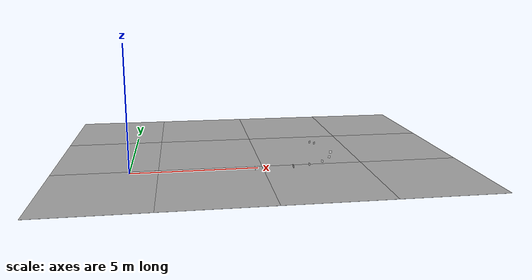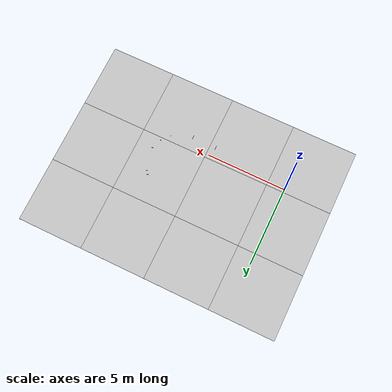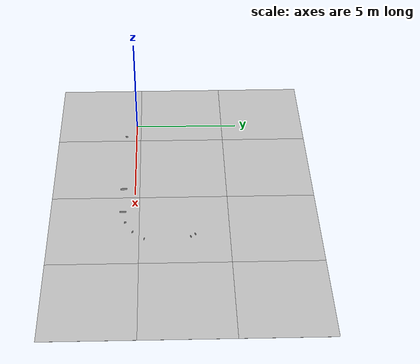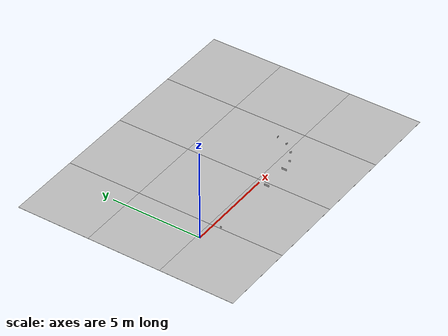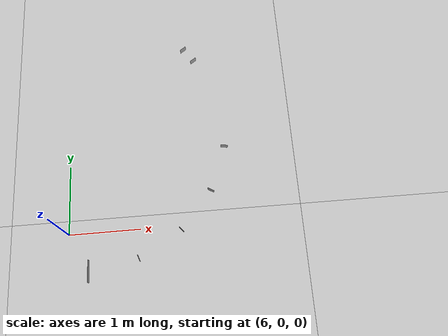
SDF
<sdf version='1.6'><world name='default'>
    <light name='sun_light' type='directional'>
      <pose frame=''>0 0 10 0 -0 0</pose>
      <diffuse>0.5 0.5 0.5 1</diffuse>
      <specular>0.1 0.1 0.1 1</specular>
      <direction>0.1 0.1 -0.9</direction>
      <attenuation>
        <range>20</range>
        <constant>0.5</constant>
        <linear>0.01</linear>
        <quadratic>0.001</quadratic>
      </attenuation>
      <cast_shadows>1</cast_shadows>
    </light>

    <model name='Tile/0-0'>
      <static>1</static>
      <link name='link'>
        <collision name='collision'>
          <geometry>
            <plane>
              <normal>0 0 1</normal>
              <size>4.096 4.096</size>
            </plane>
          </geometry>
          <surface>
            <friction>
              <ode>
                <mu>100</mu>
                <mu2>50</mu2>
              </ode>
              <torsional>
                <ode/>
              </torsional>
            </friction>
            <contact>
              <ode/>
            </contact>
            <bounce/>
          </surface>
          <max_contacts>10</max_contacts>
        </collision>
        <visual name='visual'>
          <cast_shadows>0</cast_shadows>
          <geometry>
            <plane>
              <normal>0 0 1</normal>
              <size>4.096 4.096</size>
            </plane>
          </geometry>
          <material>
            <script>
              <uri>file://materials/scripts</uri>
              <uri>file://materials/textures</uri>
              <name>Tile/59aa48be58bd1d39c4f8729740ab94a3ee72491696f29f5efb5f4e6bfd79c256</name>
            </script>
          </material>
        </visual>
        <self_collide>0</self_collide>
        <enable_wind>0</enable_wind>
        <kinematic>0</kinematic>
      </link>
      <pose frame=''>-0.952 -1.8519999999999999 0 0 -0 0</pose>
    </model>

    <model name='Tile/0-1'>
      <static>1</static>
      <link name='link'>
        <collision name='collision'>
          <geometry>
            <plane>
              <normal>0 0 1</normal>
              <size>4.096 4.096</size>
            </plane>
          </geometry>
          <surface>
            <friction>
              <ode>
                <mu>100</mu>
                <mu2>50</mu2>
              </ode>
              <torsional>
                <ode/>
              </torsional>
            </friction>
            <contact>
              <ode/>
            </contact>
            <bounce/>
          </surface>
          <max_contacts>10</max_contacts>
        </collision>
        <visual name='visual'>
          <cast_shadows>0</cast_shadows>
          <geometry>
            <plane>
              <normal>0 0 1</normal>
              <size>4.096 4.096</size>
            </plane>
          </geometry>
          <material>
            <script>
              <uri>file://materials/scripts</uri>
              <uri>file://materials/textures</uri>
              <name>Tile/cb742ec834ce0db14fa5edbd5a9bf9a3149f1d3629eb5aba388d11a938615e9e</name>
            </script>
          </material>
        </visual>
        <self_collide>0</self_collide>
        <enable_wind>0</enable_wind>
        <kinematic>0</kinematic>
      </link>
      <pose frame=''>-0.952 2.244 0 0 -0 0</pose>
    </model>

    <model name='Tile/0-2'>
      <static>1</static>
      <link name='link'>
        <collision name='collision'>
          <geometry>
            <plane>
              <normal>0 0 1</normal>
              <size>4.096 4.096</size>
            </plane>
          </geometry>
          <surface>
            <friction>
              <ode>
                <mu>100</mu>
                <mu2>50</mu2>
              </ode>
              <torsional>
                <ode/>
              </torsional>
            </friction>
            <contact>
              <ode/>
            </contact>
            <bounce/>
          </surface>
          <max_contacts>10</max_contacts>
        </collision>
        <visual name='visual'>
          <cast_shadows>0</cast_shadows>
          <geometry>
            <plane>
              <normal>0 0 1</normal>
              <size>4.096 4.096</size>
            </plane>
          </geometry>
          <material>
            <script>
              <uri>file://materials/scripts</uri>
              <uri>file://materials/textures</uri>
              <name>Tile/5eab350b8220ac9944dbdfa4ac3288c7c17e24c3bf5df0dfcf6173d64dae00a1</name>
            </script>
          </material>
        </visual>
        <self_collide>0</self_collide>
        <enable_wind>0</enable_wind>
        <kinematic>0</kinematic>
      </link>
      <pose frame=''>-0.952 6.34 0 0 -0 0</pose>
    </model>

    <model name='Tile/1-0'>
      <static>1</static>
      <link name='link'>
        <collision name='collision'>
          <geometry>
            <plane>
              <normal>0 0 1</normal>
              <size>4.096 4.096</size>
            </plane>
          </geometry>
          <surface>
            <friction>
              <ode>
                <mu>100</mu>
                <mu2>50</mu2>
              </ode>
              <torsional>
                <ode/>
              </torsional>
            </friction>
            <contact>
              <ode/>
            </contact>
            <bounce/>
          </surface>
          <max_contacts>10</max_contacts>
        </collision>
        <visual name='visual'>
          <cast_shadows>0</cast_shadows>
          <geometry>
            <plane>
              <normal>0 0 1</normal>
              <size>4.096 4.096</size>
            </plane>
          </geometry>
          <material>
            <script>
              <uri>file://materials/scripts</uri>
              <uri>file://materials/textures</uri>
              <name>Tile/88aa6c1ba2e389c2eef8b7d4c609f415ca4acb4c18d747929491a22a0553b7c5</name>
            </script>
          </material>
        </visual>
        <self_collide>0</self_collide>
        <enable_wind>0</enable_wind>
        <kinematic>0</kinematic>
      </link>
      <pose frame=''>3.144 -1.8519999999999999 0 0 -0 0</pose>
    </model>

    <model name='Tile/1-1'>
      <static>1</static>
      <link name='link'>
        <collision name='collision'>
          <geometry>
            <plane>
              <normal>0 0 1</normal>
              <size>4.096 4.096</size>
            </plane>
          </geometry>
          <surface>
            <friction>
              <ode>
                <mu>100</mu>
                <mu2>50</mu2>
              </ode>
              <torsional>
                <ode/>
              </torsional>
            </friction>
            <contact>
              <ode/>
            </contact>
            <bounce/>
          </surface>
          <max_contacts>10</max_contacts>
        </collision>
        <visual name='visual'>
          <cast_shadows>0</cast_shadows>
          <geometry>
            <plane>
              <normal>0 0 1</normal>
              <size>4.096 4.096</size>
            </plane>
          </geometry>
          <material>
            <script>
              <uri>file://materials/scripts</uri>
              <uri>file://materials/textures</uri>
              <name>Tile/5ddd2a6cf5edb8f996345af7b87e090f548fe0b630b4632dd3ba9ed6e4d9b0d3</name>
            </script>
          </material>
        </visual>
        <self_collide>0</self_collide>
        <enable_wind>0</enable_wind>
        <kinematic>0</kinematic>
      </link>
      <pose frame=''>3.144 2.244 0 0 -0 0</pose>
    </model>

    <model name='Tile/1-2'>
      <static>1</static>
      <link name='link'>
        <collision name='collision'>
          <geometry>
            <plane>
              <normal>0 0 1</normal>
              <size>4.096 4.096</size>
            </plane>
          </geometry>
          <surface>
            <friction>
              <ode>
                <mu>100</mu>
                <mu2>50</mu2>
              </ode>
              <torsional>
                <ode/>
              </torsional>
            </friction>
            <contact>
              <ode/>
            </contact>
            <bounce/>
          </surface>
          <max_contacts>10</max_contacts>
        </collision>
        <visual name='visual'>
          <cast_shadows>0</cast_shadows>
          <geometry>
            <plane>
              <normal>0 0 1</normal>
              <size>4.096 4.096</size>
            </plane>
          </geometry>
          <material>
            <script>
              <uri>file://materials/scripts</uri>
              <uri>file://materials/textures</uri>
              <name>Tile/5eab350b8220ac9944dbdfa4ac3288c7c17e24c3bf5df0dfcf6173d64dae00a1</name>
            </script>
          </material>
        </visual>
        <self_collide>0</self_collide>
        <enable_wind>0</enable_wind>
        <kinematic>0</kinematic>
      </link>
      <pose frame=''>3.144 6.34 0 0 -0 0</pose>
    </model>

    <model name='Tile/2-0'>
      <static>1</static>
      <link name='link'>
        <collision name='collision'>
          <geometry>
            <plane>
              <normal>0 0 1</normal>
              <size>4.096 4.096</size>
            </plane>
          </geometry>
          <surface>
            <friction>
              <ode>
                <mu>100</mu>
                <mu2>50</mu2>
              </ode>
              <torsional>
                <ode/>
              </torsional>
            </friction>
            <contact>
              <ode/>
            </contact>
            <bounce/>
          </surface>
          <max_contacts>10</max_contacts>
        </collision>
        <visual name='visual'>
          <cast_shadows>0</cast_shadows>
          <geometry>
            <plane>
              <normal>0 0 1</normal>
              <size>4.096 4.096</size>
            </plane>
          </geometry>
          <material>
            <script>
              <uri>file://materials/scripts</uri>
              <uri>file://materials/textures</uri>
              <name>Tile/c5b232c07722ed2893f3f45b4895ab30f2213ccb4bf319cb912ebb8fa9f5a875</name>
            </script>
          </material>
        </visual>
        <self_collide>0</self_collide>
        <enable_wind>0</enable_wind>
        <kinematic>0</kinematic>
      </link>
      <pose frame=''>7.24 -1.8519999999999999 0 0 -0 0</pose>
    </model>

    <model name='Tile/2-1'>
      <static>1</static>
      <link name='link'>
        <collision name='collision'>
          <geometry>
            <plane>
              <normal>0 0 1</normal>
              <size>4.096 4.096</size>
            </plane>
          </geometry>
          <surface>
            <friction>
              <ode>
                <mu>100</mu>
                <mu2>50</mu2>
              </ode>
              <torsional>
                <ode/>
              </torsional>
            </friction>
            <contact>
              <ode/>
            </contact>
            <bounce/>
          </surface>
          <max_contacts>10</max_contacts>
        </collision>
        <visual name='visual'>
          <cast_shadows>0</cast_shadows>
          <geometry>
            <plane>
              <normal>0 0 1</normal>
              <size>4.096 4.096</size>
            </plane>
          </geometry>
          <material>
            <script>
              <uri>file://materials/scripts</uri>
              <uri>file://materials/textures</uri>
              <name>Tile/ea01ec6d7f61fbdde9fbcadf1e8837ab0669c5f9427059ca0c0a9fba0a4ebab3</name>
            </script>
          </material>
        </visual>
        <self_collide>0</self_collide>
        <enable_wind>0</enable_wind>
        <kinematic>0</kinematic>
      </link>
      <pose frame=''>7.24 2.244 0 0 -0 0</pose>
    </model>

    <model name='Tile/2-2'>
      <static>1</static>
      <link name='link'>
        <collision name='collision'>
          <geometry>
            <plane>
              <normal>0 0 1</normal>
              <size>4.096 4.096</size>
            </plane>
          </geometry>
          <surface>
            <friction>
              <ode>
                <mu>100</mu>
                <mu2>50</mu2>
              </ode>
              <torsional>
                <ode/>
              </torsional>
            </friction>
            <contact>
              <ode/>
            </contact>
            <bounce/>
          </surface>
          <max_contacts>10</max_contacts>
        </collision>
        <visual name='visual'>
          <cast_shadows>0</cast_shadows>
          <geometry>
            <plane>
              <normal>0 0 1</normal>
              <size>4.096 4.096</size>
            </plane>
          </geometry>
          <material>
            <script>
              <uri>file://materials/scripts</uri>
              <uri>file://materials/textures</uri>
              <name>Tile/5eab350b8220ac9944dbdfa4ac3288c7c17e24c3bf5df0dfcf6173d64dae00a1</name>
            </script>
          </material>
        </visual>
        <self_collide>0</self_collide>
        <enable_wind>0</enable_wind>
        <kinematic>0</kinematic>
      </link>
      <pose frame=''>7.24 6.34 0 0 -0 0</pose>
    </model>

    <model name='Tile/3-0'>
      <static>1</static>
      <link name='link'>
        <collision name='collision'>
          <geometry>
            <plane>
              <normal>0 0 1</normal>
              <size>4.096 4.096</size>
            </plane>
          </geometry>
          <surface>
            <friction>
              <ode>
                <mu>100</mu>
                <mu2>50</mu2>
              </ode>
              <torsional>
                <ode/>
              </torsional>
            </friction>
            <contact>
              <ode/>
            </contact>
            <bounce/>
          </surface>
          <max_contacts>10</max_contacts>
        </collision>
        <visual name='visual'>
          <cast_shadows>0</cast_shadows>
          <geometry>
            <plane>
              <normal>0 0 1</normal>
              <size>4.096 4.096</size>
            </plane>
          </geometry>
          <material>
            <script>
              <uri>file://materials/scripts</uri>
              <uri>file://materials/textures</uri>
              <name>Tile/5eab350b8220ac9944dbdfa4ac3288c7c17e24c3bf5df0dfcf6173d64dae00a1</name>
            </script>
          </material>
        </visual>
        <self_collide>0</self_collide>
        <enable_wind>0</enable_wind>
        <kinematic>0</kinematic>
      </link>
      <pose frame=''>11.336 -1.8519999999999999 0 0 -0 0</pose>
    </model>

    <model name='Tile/3-1'>
      <static>1</static>
      <link name='link'>
        <collision name='collision'>
          <geometry>
            <plane>
              <normal>0 0 1</normal>
              <size>4.096 4.096</size>
            </plane>
          </geometry>
          <surface>
            <friction>
              <ode>
                <mu>100</mu>
                <mu2>50</mu2>
              </ode>
              <torsional>
                <ode/>
              </torsional>
            </friction>
            <contact>
              <ode/>
            </contact>
            <bounce/>
          </surface>
          <max_contacts>10</max_contacts>
        </collision>
        <visual name='visual'>
          <cast_shadows>0</cast_shadows>
          <geometry>
            <plane>
              <normal>0 0 1</normal>
              <size>4.096 4.096</size>
            </plane>
          </geometry>
          <material>
            <script>
              <uri>file://materials/scripts</uri>
              <uri>file://materials/textures</uri>
              <name>Tile/5eab350b8220ac9944dbdfa4ac3288c7c17e24c3bf5df0dfcf6173d64dae00a1</name>
            </script>
          </material>
        </visual>
        <self_collide>0</self_collide>
        <enable_wind>0</enable_wind>
        <kinematic>0</kinematic>
      </link>
      <pose frame=''>11.336 2.244 0 0 -0 0</pose>
    </model>

    <model name='Tile/3-2'>
      <static>1</static>
      <link name='link'>
        <collision name='collision'>
          <geometry>
            <plane>
              <normal>0 0 1</normal>
              <size>4.096 4.096</size>
            </plane>
          </geometry>
          <surface>
            <friction>
              <ode>
                <mu>100</mu>
                <mu2>50</mu2>
              </ode>
              <torsional>
                <ode/>
              </torsional>
            </friction>
            <contact>
              <ode/>
            </contact>
            <bounce/>
          </surface>
          <max_contacts>10</max_contacts>
        </collision>
        <visual name='visual'>
          <cast_shadows>0</cast_shadows>
          <geometry>
            <plane>
              <normal>0 0 1</normal>
              <size>4.096 4.096</size>
            </plane>
          </geometry>
          <material>
            <script>
              <uri>file://materials/scripts</uri>
              <uri>file://materials/textures</uri>
              <name>Tile/5eab350b8220ac9944dbdfa4ac3288c7c17e24c3bf5df0dfcf6173d64dae00a1</name>
            </script>
          </material>
        </visual>
        <self_collide>0</self_collide>
        <enable_wind>0</enable_wind>
        <kinematic>0</kinematic>
      </link>
      <pose frame=''>11.336 6.34 0 0 -0 0</pose>
    </model>

    <model name='Sign/-13'>
      <static>1</static>
      <link name='link'>
        <visual name='visual'>
          <cast_shadows>0</cast_shadows>
          <geometry>
            <plane>
              <normal>0 0 1</normal>
              <size>0.1 0.1</size>
            </plane>
          </geometry>
          <material>
            <script>
              <uri>file://materials/scripts</uri>
              <uri>file://materials/textures</uri>
              <name>Sign/stvo-306</name>
            </script>
          </material>
        </visual>
        <self_collide>0</self_collide>
        <enable_wind>0</enable_wind>
        <kinematic>0</kinematic>
      </link>
      <pose frame=''>0.9999999999999999 -0.49999999999999994 0.2 1.5707963267948966 0 4.71238898038469</pose>
    </model>

    <model name='Sign/-18'>
      <static>1</static>
      <link name='link'>
        <visual name='visual'>
          <cast_shadows>0</cast_shadows>
          <geometry>
            <plane>
              <normal>0 0 1</normal>
              <size>0.3 0.1</size>
            </plane>
          </geometry>
          <material>
            <script>
              <uri>file://materials/scripts</uri>
              <uri>file://materials/textures</uri>
              <name>Sign/stvo-625-11</name>
            </script>
          </material>
        </visual>
        <self_collide>0</self_collide>
        <enable_wind>0</enable_wind>
        <kinematic>0</kinematic>
      </link>
      <pose frame=''>4.805 -0.5499999999999999 0.2 1.5707963267948966 0 4.71238898038469</pose>
    </model>

    <model name='Sign/-23'>
      <static>1</static>
      <link name='link'>
        <visual name='visual'>
          <cast_shadows>0</cast_shadows>
          <geometry>
            <plane>
              <normal>0 0 1</normal>
              <size>0.3 0.1</size>
            </plane>
          </geometry>
          <material>
            <script>
              <uri>file://materials/scripts</uri>
              <uri>file://materials/textures</uri>
              <name>Sign/stvo-625-11</name>
            </script>
          </material>
        </visual>
        <self_collide>0</self_collide>
        <enable_wind>0</enable_wind>
        <kinematic>0</kinematic>
      </link>
      <pose frame=''>6.3149999999999995 -0.5499999999999999 0.2 1.5707963267948966 0 4.71238898038469</pose>
    </model>

    <model name='Sign/-28'>
      <static>1</static>
      <link name='link'>
        <visual name='visual'>
          <cast_shadows>0</cast_shadows>
          <geometry>
            <plane>
              <normal>0 0 1</normal>
              <size>0.1 0.1</size>
            </plane>
          </geometry>
          <material>
            <script>
              <uri>file://materials/scripts</uri>
              <uri>file://materials/textures</uri>
              <name>Sign/stvo-625-10</name>
            </script>
          </material>
        </visual>
        <self_collide>0</self_collide>
        <enable_wind>0</enable_wind>
        <kinematic>0</kinematic>
      </link>
      <pose frame=''>6.991637742588983 -0.43069050981589285 0.2 1.5707963267948966 0 5.061454830783555</pose>
    </model>

    <model name='Sign/-33'>
      <static>1</static>
      <link name='link'>
        <visual name='visual'>
          <cast_shadows>0</cast_shadows>
          <geometry>
            <plane>
              <normal>0 0 1</normal>
              <size>0.1 0.1</size>
            </plane>
          </geometry>
          <material>
            <script>
              <uri>file://materials/scripts</uri>
              <uri>file://materials/textures</uri>
              <name>Sign/stvo-625-10</name>
            </script>
          </material>
        </visual>
        <self_collide>0</self_collide>
        <enable_wind>0</enable_wind>
        <kinematic>0</kinematic>
      </link>
      <pose frame=''>7.586662987312206 -0.08715252460031764 0.2 1.5707963267948966 0 5.410520681182422</pose>
    </model>

    <model name='Sign/-38'>
      <static>1</static>
      <link name='link'>
        <visual name='visual'>
          <cast_shadows>0</cast_shadows>
          <geometry>
            <plane>
              <normal>0 0 1</normal>
              <size>0.1 0.1</size>
            </plane>
          </geometry>
          <material>
            <script>
              <uri>file://materials/scripts</uri>
              <uri>file://materials/textures</uri>
              <name>Sign/stvo-625-10</name>
            </script>
          </material>
        </visual>
        <self_collide>0</self_collide>
        <enable_wind>0</enable_wind>
        <kinematic>0</kinematic>
      </link>
      <pose frame=''>8.028306908018704 0.4391782045490448 0.2 1.5707963267948966 0 5.759586531581288</pose>
    </model>

    <model name='Sign/-43'>
      <static>1</static>
      <link name='link'>
        <visual name='visual'>
          <cast_shadows>0</cast_shadows>
          <geometry>
            <plane>
              <normal>0 0 1</normal>
              <size>0.1 0.1</size>
            </plane>
          </geometry>
          <material>
            <script>
              <uri>file://materials/scripts</uri>
              <uri>file://materials/textures</uri>
              <name>Sign/stvo-625-10</name>
            </script>
          </material>
        </visual>
        <self_collide>0</self_collide>
        <enable_wind>0</enable_wind>
        <kinematic>0</kinematic>
      </link>
      <pose frame=''>8.26330072990119 1.084818423882514 0.2 1.5707963267948966 0 6.1086523819801535</pose>
    </model>

    <model name='Sign/-56'>
      <static>1</static>
      <link name='link'>
        <visual name='visual'>
          <cast_shadows>0</cast_shadows>
          <geometry>
            <plane>
              <normal>0 0 1</normal>
              <size>0.1 0.1</size>
            </plane>
          </geometry>
          <material>
            <script>
              <uri>file://materials/scripts</uri>
              <uri>file://materials/textures</uri>
              <name>Sign/stvo-209-10</name>
            </script>
          </material>
        </visual>
        <self_collide>0</self_collide>
        <enable_wind>0</enable_wind>
        <kinematic>0</kinematic>
      </link>
      <pose frame=''>7.75678862747704 2.7229396492373246 0.2 1.5707963267948966 0 6.894050545377602</pose>
    </model>

    <model name='Sign/-57'>
      <static>1</static>
      <link name='link'>
        <visual name='visual'>
          <cast_shadows>0</cast_shadows>
          <geometry>
            <plane>
              <normal>0 0 1</normal>
              <size>0.1 0.1</size>
            </plane>
          </geometry>
          <material>
            <script>
              <uri>file://materials/scripts</uri>
              <uri>file://materials/textures</uri>
              <name>Sign/stvo-205</name>
            </script>
          </material>
        </visual>
        <self_collide>0</self_collide>
        <enable_wind>0</enable_wind>
        <kinematic>0</kinematic>
      </link>
      <pose frame=''>7.900182736564802 2.518151638165077 0.2 1.5707963267948966 0 6.894050545377602</pose>
    </model>
    </world></sdf>
